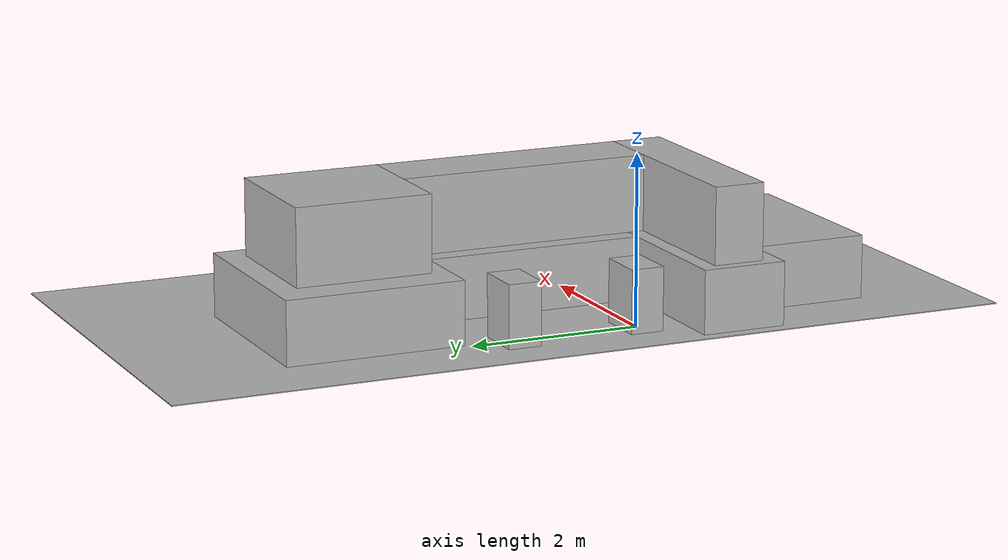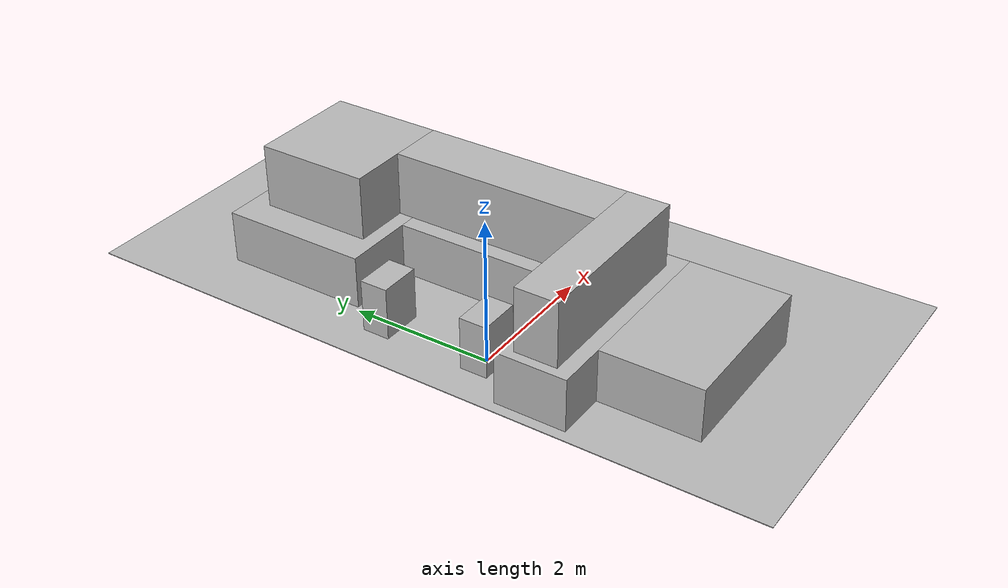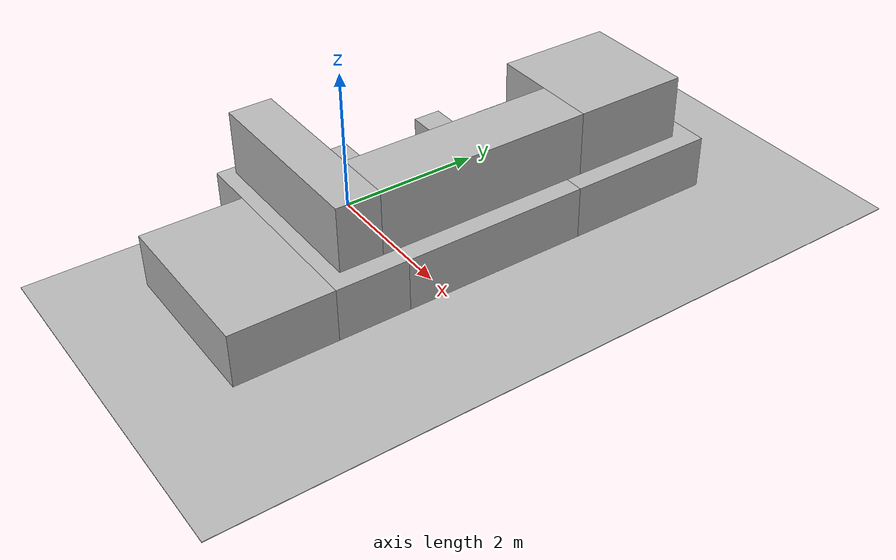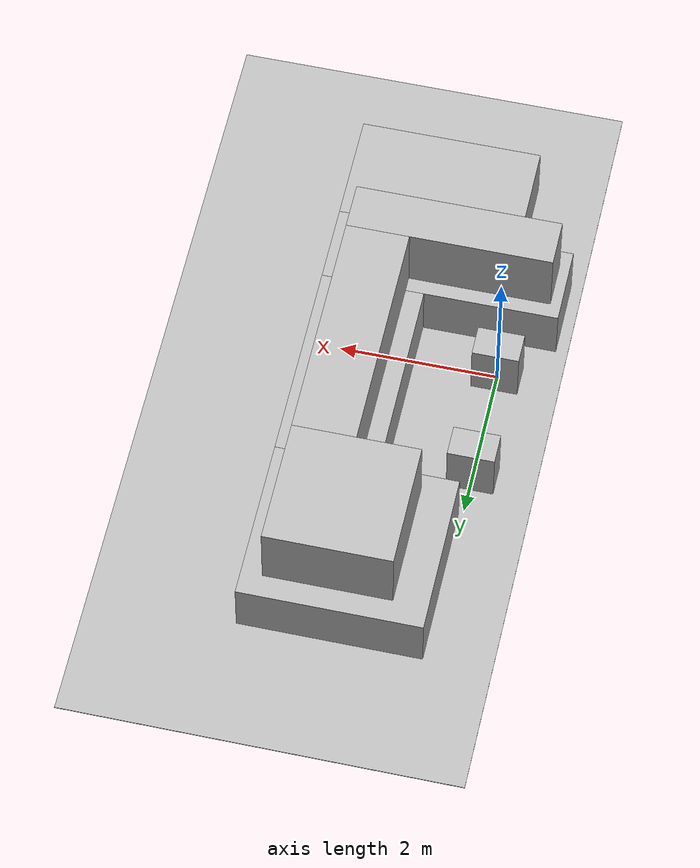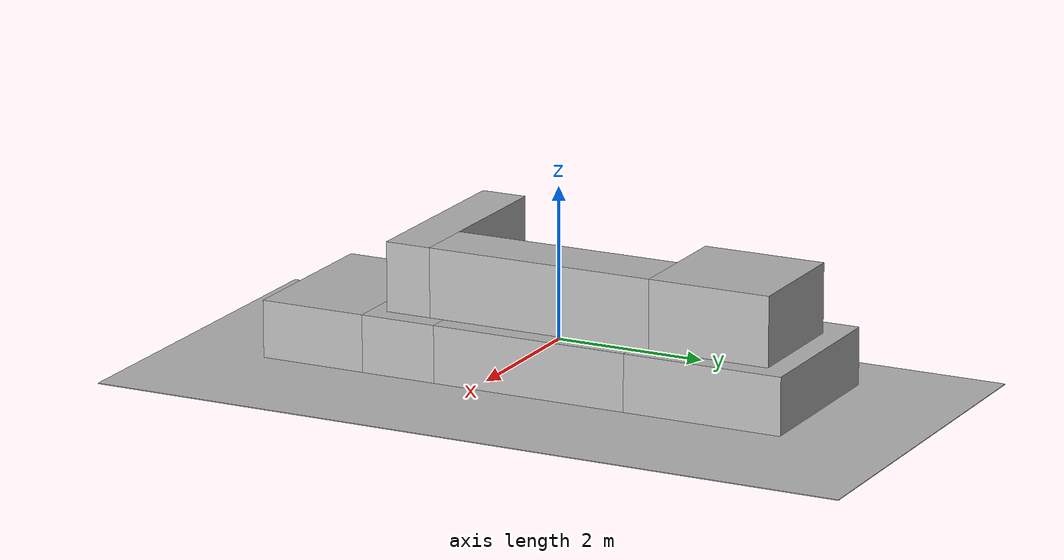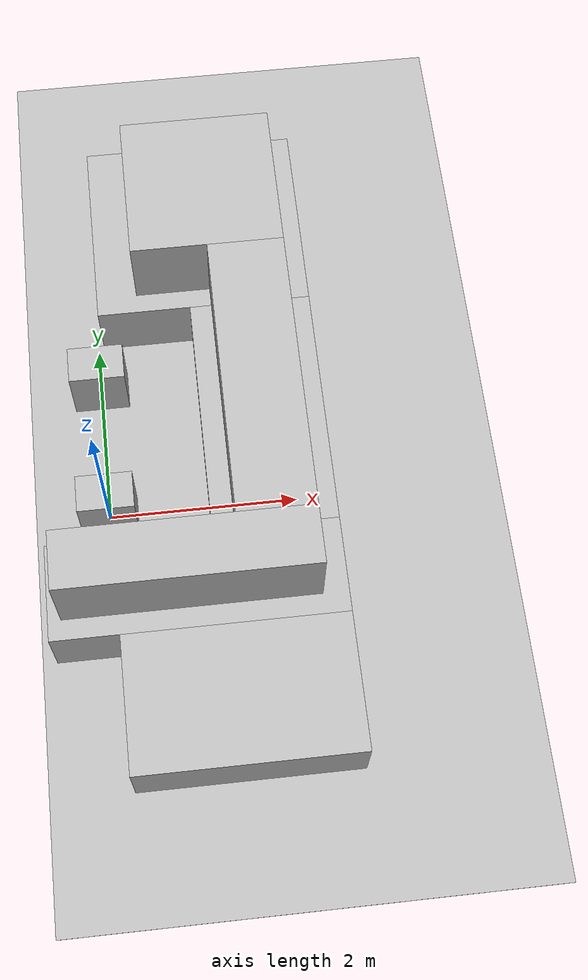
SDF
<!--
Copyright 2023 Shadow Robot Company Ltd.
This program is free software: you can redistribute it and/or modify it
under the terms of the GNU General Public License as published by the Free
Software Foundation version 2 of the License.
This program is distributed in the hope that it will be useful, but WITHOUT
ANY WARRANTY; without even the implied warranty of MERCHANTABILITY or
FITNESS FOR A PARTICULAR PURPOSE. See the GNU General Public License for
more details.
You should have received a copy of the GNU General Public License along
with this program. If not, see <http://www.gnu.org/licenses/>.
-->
<sdf version="1.7">
 <world name="default">
  <light name="lab_light" type="directional">
   <pose>0.86 1.96 2.5 -1.55 0 0</pose>
   <diffuse>0.8 0.8 0.8 1</diffuse>
   <specular>0.2 0.2 0.2 1</specular>
   <attenuation>
    <range>20</range>
    <constant>0.9</constant>
    <linear>0.01</linear>
    <quadratic>0.001</quadratic>
   </attenuation>
   <direction>0 0 -1</direction>
   <spot><inner_angle>0</inner_angle><outer_angle>0</outer_angle><falloff>0</falloff></spot>
  </light>
  <physics type="ode">
   <ode>
    <solver>
     <type>quick</type>
     <iters>100</iters>
     <precon_iters>0</precon_iters>
     <sor>1</sor>
     <use_dynamic_moi_rescaling>0</use_dynamic_moi_rescaling>
    </solver>
    <constraints>
     <cfm>0</cfm>
     <erp>0.5</erp>
     <contact_max_correcting_vel>1000</contact_max_correcting_vel>
     <contact_surface_layer>0</contact_surface_layer>
    </constraints>
   </ode>
   <real_time_factor>1</real_time_factor>
   <max_step_size>0.001</max_step_size>
   <real_time_update_rate>1000</real_time_update_rate>
  </physics>
  <scene><ambient>0.4 0.4 0.4 1</ambient><background>0.7 0.7 1 1</background><shadows>1</shadows></scene>
  <gravity>0 0 -9.81</gravity>
  <magnetic_field>6e-06 2.3e-05 -4.2e-05</magnetic_field>
  <atmosphere type="adiabatic"/>
  <spherical_coordinates>
   <surface_model>EARTH_WGS84</surface_model>
   <latitude_deg>0</latitude_deg>
   <longitude_deg>0</longitude_deg>
   <elevation>0</elevation>
   <heading_deg>0</heading_deg>
  </spherical_coordinates>
  <model name="filling_line_boxes">
   <static>1</static>
   <link name="ground">
    <collision name="ground_col">
     <pose>-1 -0.7 -0.005 0 -0 0</pose>
     <geometry><box><size>5 10 0.01</size></box></geometry>
    </collision>
    <visual name="visual"><geometry><box><size>5 10 0.01</size></box></geometry></visual>
   </link>
   <link name="filling_line_box">
    <collision name="filling_line_box_col">
     <pose>0 0 0.375 0 -0 0</pose>
     <geometry><box><size>1.3 2.6 0.75</size></box></geometry>
    </collision>
    <visual name="filling_line_box_vis">
     <pose>0 0 0.375 0 -0 0</pose>
     <geometry><box><size>1.3 2.6 0.75</size></box></geometry>
    </visual>
   </link>
   <link name="filling_line_box_1">
    <collision name="filling_line_box_1_col">
     <pose>-0.5 2.35 0.375 0 -0 0</pose>
     <geometry><box><size>2.3 2.1 0.75</size></box></geometry>
    </collision>
    <visual name="filling_line_box_1_vis">
     <pose>-0.5 2.35 0.375 0 -0 0</pose>
     <geometry><box><size>2.3 2.1 0.75</size></box></geometry>
    </visual>
   </link>
   <link name="filling_line_box_2">
    <collision name="filling_line_box_2_col">
     <pose>-0.85 -1.8 0.375 0 -0 0</pose>
     <geometry><box><size>3 1 0.75</size></box></geometry>
    </collision>
    <visual name="filling_line_box_2_vis">
     <pose>-0.85 -1.8 0.375 0 -0 0</pose>
     <geometry><box><size>3 1 0.75</size></box></geometry>
    </visual>
   </link>
   <link name="filling_line_box_3">
    <collision name="filling_line_box_3_col">
     <pose>-0.5 -3 0.375 0 -0 0</pose>
     <geometry><box><size>2.3 1.4 0.75</size></box></geometry>
    </collision>
    <visual name="filling_line_box_3_vis">
     <pose>-0.5 -3 0.375 0 -0 0</pose>
     <geometry><box><size>2.3 1.4 0.75</size></box></geometry>
    </visual>
   </link>
   <pose>1.70909 0.760907 0 0 -0 0</pose>
  </model>
  <model name="laminar_flow_boxes">
   <static>1</static>
   <link name="laminar_flow_box">
    <collision name="laminar_flow_box_col"><geometry><box><size>0.8 3 0.9</size></box></geometry></collision>
    <visual name="laminar_flow_box_vis"><geometry><box><size>0.8 3 0.9</size></box></geometry></visual>
   </link>
   <link name="laminar_flow_box_1">
    <collision name="laminar_flow_box_1_col">
     <pose>-0.4 2.3 0 0 -0 0</pose>
     <geometry><box><size>1.6 1.6 0.9</size></box></geometry>
    </collision>
    <visual name="laminar_flow_box_1_vis">
     <pose>-0.4 2.3 0 0 -0 0</pose>
     <geometry><box><size>1.6 1.6 0.9</size></box></geometry>
    </visual>
   </link>
   <link name="laminar_flow_box_2">
    <collision name="laminar_flow_box_2_col">
     <pose>-0.9 -1.8 0 0 -0 0</pose>
     <geometry><box><size>2.6 0.6 0.9</size></box></geometry>
    </collision>
    <visual name="laminar_flow_box_2_vis">
     <pose>-0.9 -1.8 0 0 -0 0</pose>
     <geometry><box><size>2.6 0.6 0.9</size></box></geometry>
    </visual>
   </link>
   <pose>1.69321 0.769999 1.2 0 -0 0</pose>
  </model>
  <model name="stand_box">
   <static>1</static>
   <link name="link">
    <inertial>
     <mass>1</mass>
     <inertia><ixx>0.083</ixx><ixy>0</ixy><ixz>0</ixz><iyy>0.083</iyy><iyz>0</iyz><izz>0.083</izz></inertia>
    </inertial>
    <collision name="collision"><geometry><box><size>0.59 0.39 0.75</size></box></geometry></collision>
    <visual name="visual"><geometry><box><size>0.59 0.39 0.75</size></box></geometry></visual>
   </link>
   <pose>0.001965 -0.001968 0.373977 0 -0 0</pose>
  </model>
  <model name="stand_box_0">
   <static>1</static>
   <link name="link">
    <inertial>
     <mass>1</mass>
     <inertia><ixx>0.083</ixx><ixy>0</ixy><ixz>0</ixz><iyy>0.083</iyy><iyz>0</iyz><izz>0.083</izz></inertia>
    </inertial>
    <collision name="collision"><geometry><box><size>0.59 0.39 0.75</size></box></geometry></collision>
    <visual name="visual"><geometry><box><size>0.59 0.39 0.75</size></box></geometry></visual>
   </link>
   <pose>-0.001145 1.49591 0.367416 0 -0 0</pose>
  </model>
 </world>
</sdf>
